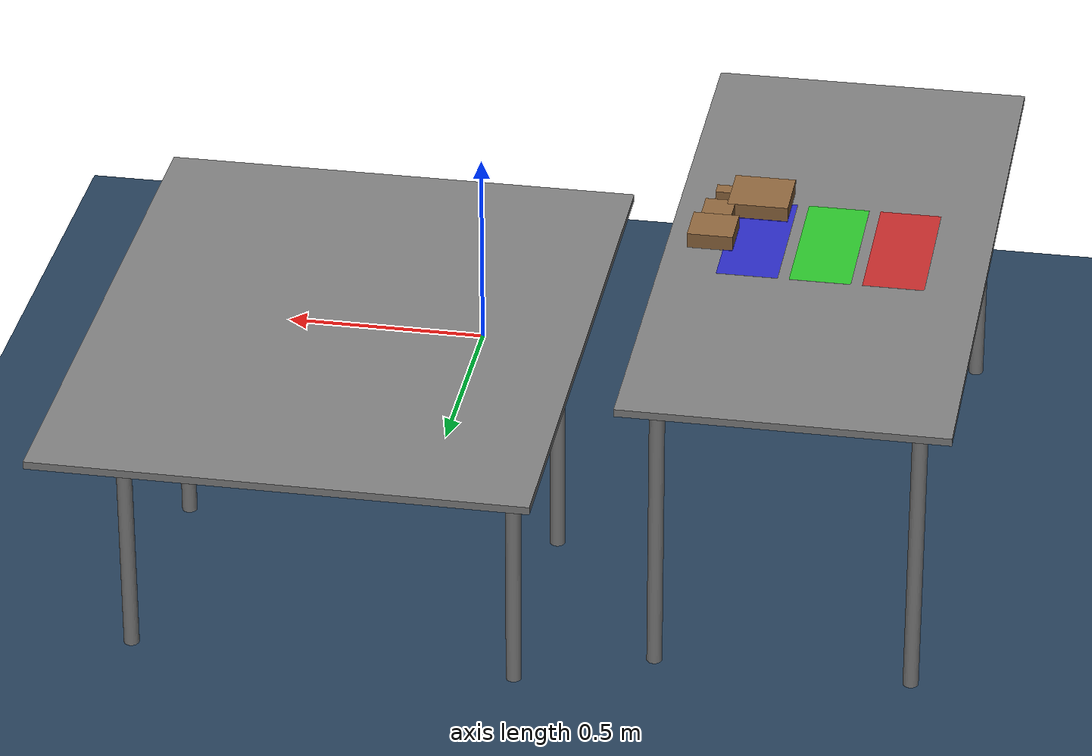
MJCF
<mujoco model="tableworld">
    <compiler eulerseq="XYZ"/>
    <statistic center="0.3 0 0.4" extent="0.8"/>

    <visual>
        <headlight diffuse="0.6 0.6 0.6" ambient="0.1 0.1 0.1"/>
        <rgba haze="0.15 0.25 0.35 1"/>
        <global azimuth="120" elevation="-20" offwidth="1280" offheight="720"/>
    </visual>

    <asset>
        <texture type="skybox" builtin="gradient" rgb1="0.3 0.5 0.7" rgb2="0 0 0" width="512" height="3072"/>
        <texture type="2d" name="groundplane" builtin="checker" mark="edge" rgb1="0.2 0.3 0.4" rgb2="0.1 0.2 0.3" markrgb="0.8 0.8 0.8" width="300" height="300"/>
        <material name="groundplane" texture="groundplane" texuniform="true" texrepeat="5 5" reflectance="0.2"/>

        <texture name="wood" file="wood.png" type="2d"/>
        <material name="wood_material" texture="wood" texrepeat="50 50" texuniform="true" rgba="0.8 0.8 0.8 1"/>
        <material name="red_mat" rgba="1 0 0 0.6"/>
        <material name="green_mat" rgba="0 1 0 0.6"/>
        <material name="blue_mat" rgba="0 0 1 0.6"/>
    </asset>

    <worldbody>
        <light pos="0 0 1.5" dir="0 0 -1" directional="true"/>

        <geom name="floor" pos="0.0 0.0 -0.8" size="0 0 0.05" type="plane" material="groundplane"/>

<!--         Tables and Walls-->
        <body name="table1" pos="0.365 0 -0.005">
            <geom name="table1_top" type="box" size="0.625 0.8 0.01" pos="0 0 0"/>
            <geom name="table1_leg_1" type="cylinder" size=".02 .4" pos=".5 -.33 -.4" euler="0 0 0"/>
            <geom name="table1_leg_2" type="cylinder" size=".02 .4" pos=".5 .33 -.4" euler="0 0 0"/>
            <geom name="table1_leg_3" type="cylinder" size=".02 .4" pos="-.5 -.33 -.4" euler="0 0 0"/>
            <geom name="table1_leg_4" type="cylinder" size=".02 .4" pos="-.5 .33 -.4" euler="0 0 0"/>
        </body>

        <body name="table2" pos="-0.805 -0.615 -0.005">
            <geom name="red_region" type="box" size="0.08 0.20 0.001" pos="-0.19 0 0.01" material="red_mat" contype="0" conaffinity="0"/>
            <geom name="green_region" type="box" size="0.08 0.20 0.001" pos="0 0 0.01" material="green_mat" contype="0" conaffinity="0"/>
            <geom name="blue_region" type="box" size="0.08 0.20 0.001" pos="0.19 0 0.01" material="blue_mat" contype="0" conaffinity="0"/>

            <geom name="table2_top" type="box" size="0.42 0.925 0.01" pos="0 0 0"/>
            <geom name="table2_leg_1" type="cylinder" size=".02 .4" pos=".33 -.8 -.4" euler="0 0 0"/>
            <geom name="table2_leg_2" type="cylinder" size=".02 .4" pos=".33 .8 -.4" euler="0 0 0"/>
            <geom name="table2_leg_3" type="cylinder" size=".02 .4" pos="-.33 -.8 -.4" euler="0 0 0"/>
            <geom name="table2_leg_4" type="cylinder" size=".02 .4" pos="-.33 .8 -.4" euler="0 0 0"/>
        </body>

        <!-- Blocks representing 'X' -->
        <body name="block0" pos="-0.5 -0.8 0.025" quat="0. 0. 1. 0.">
            <freejoint name="block0_fj"/>
            <geom type="box" size=".02 .02 .02" material="wood_material"/>
        </body>
        <body name="block1" pos="-0.5 -0.7 0.025" quat="0. 0. 1. 0.">
            <freejoint name="block1_fj"/>
            <geom type="box" size=".04 .04 .02" material="wood_material"/>
        </body>
        <body name="block2" pos="-0.5 -0.6 0.025" quat="0. 0. 1. 0.">
            <freejoint name="block2_fj"/>
            <geom type="box" size=".06 .06 .02"  material="wood_material"/>
        </body>
        <body name="block3" pos="-0.6 -0.8 0.025" quat="0. 0. 1. 0.">
            <freejoint name="block3_fj"/>
            <geom type="box" size=".08 .08 .02" material="wood_material"/>
        </body>

        <camera name="top-right" pos="1.3 -1.5 1.1" euler="1 0 1.1"/>

        <camera name="robot-cam" pos="1.3 -1.5 1.1" euler="1 0 1.1" fovy="60"/>
    </worldbody>
</mujoco>
